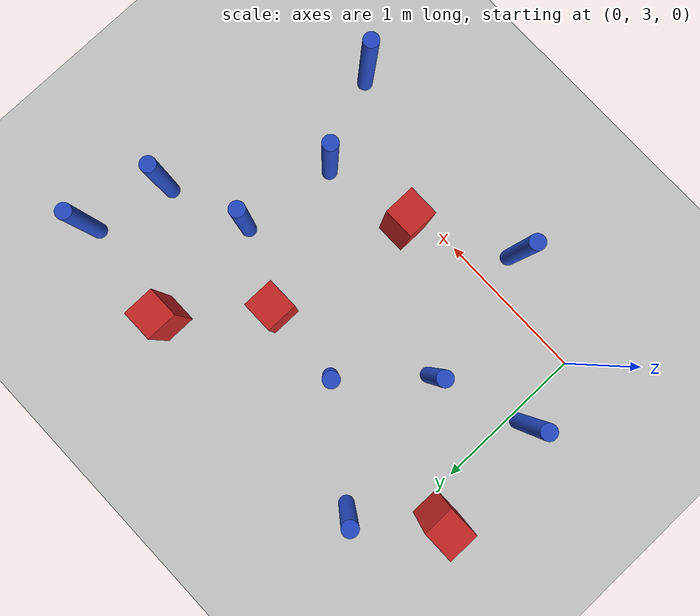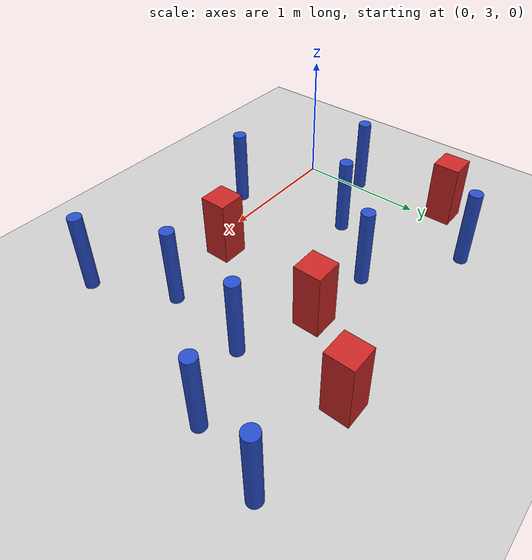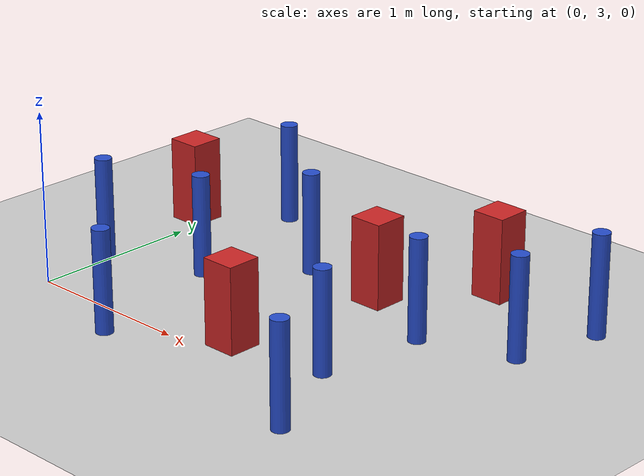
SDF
<sdf version="1.6">
 <world name="default">
  <model name="ground_plane">
   <static>1</static>
   <link name="link">
    <collision name="collision">
     <geometry><plane><normal>0 0 1</normal><size>100 100</size></plane></geometry>
     <surface><friction><ode><mu>100</mu><mu2>50</mu2></ode></friction></surface>
    </collision>
    <visual name="visual">
     <cast_shadows>0</cast_shadows>
     <geometry><plane><normal>0 0 1</normal><size>100 100</size></plane></geometry>
     <material>
      <ambient>1.0 1.0 1.0 1.0</ambient>
      <diffuse>0.8 0.8 0.8 1.0</diffuse>
      <specular>0.01 0.01 0.01 1.000000</specular>
     </material>
    </visual>
   </link>
  </model>
  <model name="square_post_obstacle95">
   <static>true</static>
   <pose>-0.101948517091 4.22717936182 1.91545236811e-07 -7.35059704564e-06 1.12565212e-07 2.39332434364e-05</pose>
   <link name="link">
    <pose>0 0 0.25 0 -0 0</pose>
    <inertial>
     <mass>100</mass>
     <inertia>
      <ixx>0.166667</ixx>
      <ixy>0</ixy>
      <ixz>0</ixz>
      <iyy>0.166667</iyy>
      <iyz>0</iyz>
      <izz>0.166667</izz>
     </inertia>
    </inertial>
    <collision name="collision"><geometry><box><size>.2 .2 .5</size></box></geometry></collision>
    <visual name="visual">
     <geometry><box><size>.2 .2 .5</size></box></geometry>
     <material>
      <script><name>Gazebo/Red</name><uri>file://media/materials/scripts/gazebo.material</uri></script>
     </material>
    </visual>
   </link>
  </model>
  <model name="pole_obstacle117">
   <static>true</static>
   <pose>2.63049294714 4.57048623213 7.38925637345e-09 -8.47170692798e-08 1.24976765033e-08 -1.74513093019e-07</pose>
   <link name="link">
    <pose>0 0 0.3 0 -0 0</pose>
    <inertial>
     <mass>1</mass>
     <inertia><ixx>0.145833</ixx><ixy>0</ixy><ixz>0</ixz><iyy>0.145833</iyy><iyz>0</iyz><izz>0.125</izz></inertia>
    </inertial>
    <collision name="collision">
     <geometry><cylinder><radius>0.05</radius><length>.6</length></cylinder></geometry>
    </collision>
    <visual name="visual">
     <geometry><cylinder><radius>0.05</radius><length>.6</length></cylinder></geometry>
     <material>
      <script><name>Gazebo/Blue</name><uri>file://media/materials/scripts/gazebo.material</uri></script>
     </material>
    </visual>
   </link>
  </model>
  <model name="square_post_obstacle113">
   <static>true</static>
   <pose>1.90695930333 4.61768448525 1.91545236811e-07 -7.35059704564e-06 1.12565212e-07 2.39332434364e-05</pose>
   <link name="link">
    <pose>0 0 0.25 0 -0 0</pose>
    <inertial>
     <mass>100</mass>
     <inertia>
      <ixx>0.166667</ixx>
      <ixy>0</ixy>
      <ixz>0</ixz>
      <iyy>0.166667</iyy>
      <iyz>0</iyz>
      <izz>0.166667</izz>
     </inertia>
    </inertial>
    <collision name="collision"><geometry><box><size>.2 .2 .5</size></box></geometry></collision>
    <visual name="visual">
     <geometry><box><size>.2 .2 .5</size></box></geometry>
     <material>
      <script><name>Gazebo/Red</name><uri>file://media/materials/scripts/gazebo.material</uri></script>
     </material>
    </visual>
   </link>
  </model>
  <model name="pole_obstacle141">
   <static>true</static>
   <pose>2.50846986795 4.05662313125 7.38925637345e-09 -8.47170692798e-08 1.24976765033e-08 -1.74513093019e-07</pose>
   <link name="link">
    <pose>0 0 0.3 0 -0 0</pose>
    <inertial>
     <mass>1</mass>
     <inertia><ixx>0.145833</ixx><ixy>0</ixy><ixz>0</ixz><iyy>0.145833</iyy><iyz>0</iyz><izz>0.125</izz></inertia>
    </inertial>
    <collision name="collision">
     <geometry><cylinder><radius>0.05</radius><length>.6</length></cylinder></geometry>
    </collision>
    <visual name="visual">
     <geometry><cylinder><radius>0.05</radius><length>.6</length></cylinder></geometry>
     <material>
      <script><name>Gazebo/Blue</name><uri>file://media/materials/scripts/gazebo.material</uri></script>
     </material>
    </visual>
   </link>
  </model>
  <model name="pole_obstacle144">
   <static>true</static>
   <pose>2.17845305973 2.66415931733 7.38925637345e-09 -8.47170692798e-08 1.24976764939e-08 -1.74513093025e-07</pose>
   <link name="link">
    <pose>0 0 0.3 0 -0 0</pose>
    <inertial>
     <mass>1</mass>
     <inertia><ixx>0.145833</ixx><ixy>0</ixy><ixz>0</ixz><iyy>0.145833</iyy><iyz>0</iyz><izz>0.125</izz></inertia>
    </inertial>
    <collision name="collision">
     <geometry><cylinder><radius>0.05</radius><length>.6</length></cylinder></geometry>
    </collision>
    <visual name="visual">
     <geometry><cylinder><radius>0.05</radius><length>.6</length></cylinder></geometry>
     <material>
      <script><name>Gazebo/Blue</name><uri>file://media/materials/scripts/gazebo.material</uri></script>
     </material>
    </visual>
   </link>
  </model>
  <model name="pole_obstacle177">
   <static>true</static>
   <pose>0.953067478455 4.12687048384 7.38925637345e-09 -8.471706928e-08 1.24976765144e-08 -1.74513093012e-07</pose>
   <link name="link">
    <pose>0 0 0.3 0 -0 0</pose>
    <inertial>
     <mass>1</mass>
     <inertia><ixx>0.145833</ixx><ixy>0</ixy><ixz>0</ixz><iyy>0.145833</iyy><iyz>0</iyz><izz>0.125</izz></inertia>
    </inertial>
    <collision name="collision">
     <geometry><cylinder><radius>0.05</radius><length>.6</length></cylinder></geometry>
    </collision>
    <visual name="visual">
     <geometry><cylinder><radius>0.05</radius><length>.6</length></cylinder></geometry>
     <material>
      <script><name>Gazebo/Blue</name><uri>file://media/materials/scripts/gazebo.material</uri></script>
     </material>
    </visual>
   </link>
  </model>
  <model name="square_post_obstacle172">
   <static>true</static>
   <pose>1.3238068495 3.15627844694 1.91545236811e-07 -7.35059704564e-06 1.12565212e-07 2.39332434364e-05</pose>
   <link name="link">
    <pose>0 0 0.25 0 -0 0</pose>
    <inertial>
     <mass>100</mass>
     <inertia>
      <ixx>0.166667</ixx>
      <ixy>0</ixy>
      <ixz>0</ixz>
      <iyy>0.166667</iyy>
      <iyz>0</iyz>
      <izz>0.166667</izz>
     </inertia>
    </inertial>
    <collision name="collision"><geometry><box><size>.2 .2 .5</size></box></geometry></collision>
    <visual name="visual">
     <geometry><box><size>.2 .2 .5</size></box></geometry>
     <material>
      <script><name>Gazebo/Red</name><uri>file://media/materials/scripts/gazebo.material</uri></script>
     </material>
    </visual>
   </link>
  </model>
  <model name="square_post_obstacle176">
   <static>true</static>
   <pose>1.48437570815 4.09719617396 1.91545236811e-07 -7.35059704564e-06 1.12565212e-07 2.39332434364e-05</pose>
   <link name="link">
    <pose>0 0 0.25 0 -0 0</pose>
    <inertial>
     <mass>100</mass>
     <inertia>
      <ixx>0.166667</ixx>
      <ixy>0</ixy>
      <ixz>0</ixz>
      <iyy>0.166667</iyy>
      <iyz>0</iyz>
      <izz>0.166667</izz>
     </inertia>
    </inertial>
    <collision name="collision"><geometry><box><size>.2 .2 .5</size></box></geometry></collision>
    <visual name="visual">
     <geometry><box><size>.2 .2 .5</size></box></geometry>
     <material>
      <script><name>Gazebo/Red</name><uri>file://media/materials/scripts/gazebo.material</uri></script>
     </material>
    </visual>
   </link>
  </model>
  <model name="pole_obstacle210">
   <static>true</static>
   <pose>1.98516598058 3.86835828804 7.38925637345e-09 -8.47170692799e-08 1.24976765015e-08 -1.74513093019e-07</pose>
   <link name="link">
    <pose>0 0 0.3 0 -0 0</pose>
    <inertial>
     <mass>1</mass>
     <inertia><ixx>0.145833</ixx><ixy>0</ixy><ixz>0</ixz><iyy>0.145833</iyy><iyz>0</iyz><izz>0.125</izz></inertia>
    </inertial>
    <collision name="collision">
     <geometry><cylinder><radius>0.05</radius><length>.6</length></cylinder></geometry>
    </collision>
    <visual name="visual">
     <geometry><cylinder><radius>0.05</radius><length>.6</length></cylinder></geometry>
     <material>
      <script><name>Gazebo/Blue</name><uri>file://media/materials/scripts/gazebo.material</uri></script>
     </material>
    </visual>
   </link>
  </model>
  <model name="pole_obstacle211">
   <static>true</static>
   <pose>0.537054522652 3.67712919654 7.38925637345e-09 -8.471706928e-08 1.2497676512e-08 -1.74513093015e-07</pose>
   <link name="link">
    <pose>0 0 0.3 0 -0 0</pose>
    <inertial>
     <mass>1</mass>
     <inertia><ixx>0.145833</ixx><ixy>0</ixy><ixz>0</ixz><iyy>0.145833</iyy><iyz>0</iyz><izz>0.125</izz></inertia>
    </inertial>
    <collision name="collision">
     <geometry><cylinder><radius>0.05</radius><length>.6</length></cylinder></geometry>
    </collision>
    <visual name="visual">
     <geometry><cylinder><radius>0.05</radius><length>.6</length></cylinder></geometry>
     <material>
      <script><name>Gazebo/Blue</name><uri>file://media/materials/scripts/gazebo.material</uri></script>
     </material>
    </visual>
   </link>
  </model>
  <model name="pole_obstacle214">
   <static>true</static>
   <pose>-0.0466436121755 3.46974929724 7.38925637345e-09 -8.47170692793e-08 1.24976764354e-08 -1.74513093044e-07</pose>
   <link name="link">
    <pose>0 0 0.3 0 -0 0</pose>
    <inertial>
     <mass>1</mass>
     <inertia><ixx>0.145833</ixx><ixy>0</ixy><ixz>0</ixz><iyy>0.145833</iyy><iyz>0</iyz><izz>0.125</izz></inertia>
    </inertial>
    <collision name="collision">
     <geometry><cylinder><radius>0.05</radius><length>.6</length></cylinder></geometry>
    </collision>
    <visual name="visual">
     <geometry><cylinder><radius>0.05</radius><length>.6</length></cylinder></geometry>
     <material>
      <script><name>Gazebo/Blue</name><uri>file://media/materials/scripts/gazebo.material</uri></script>
     </material>
    </visual>
   </link>
  </model>
  <model name="pole_obstacle230">
   <static>true</static>
   <pose>1.90436000957 3.23788002078 7.38925637345e-09 -8.47170692793e-08 1.24976764479e-08 -1.74513093037e-07</pose>
   <link name="link">
    <pose>0 0 0.3 0 -0 0</pose>
    <inertial>
     <mass>1</mass>
     <inertia><ixx>0.145833</ixx><ixy>0</ixy><ixz>0</ixz><iyy>0.145833</iyy><iyz>0</iyz><izz>0.125</izz></inertia>
    </inertial>
    <collision name="collision">
     <geometry><cylinder><radius>0.05</radius><length>.6</length></cylinder></geometry>
    </collision>
    <visual name="visual">
     <geometry><cylinder><radius>0.05</radius><length>.6</length></cylinder></geometry>
     <material>
      <script><name>Gazebo/Blue</name><uri>file://media/materials/scripts/gazebo.material</uri></script>
     </material>
    </visual>
   </link>
  </model>
  <model name="pole_obstacle233">
   <static>true</static>
   <pose>0.316634009575 4.58930002078 7.38925637345e-09 -8.47170692799e-08 1.2497676511e-08 -1.74513093014e-07</pose>
   <link name="link">
    <pose>0 0 0.3 0 -0 0</pose>
    <inertial>
     <mass>1</mass>
     <inertia><ixx>0.145833</ixx><ixy>0</ixy><ixz>0</ixz><iyy>0.145833</iyy><iyz>0</iyz><izz>0.125</izz></inertia>
    </inertial>
    <collision name="collision">
     <geometry><cylinder><radius>0.05</radius><length>.6</length></cylinder></geometry>
    </collision>
    <visual name="visual">
     <geometry><cylinder><radius>0.05</radius><length>.6</length></cylinder></geometry>
     <material>
      <script><name>Gazebo/Blue</name><uri>file://media/materials/scripts/gazebo.material</uri></script>
     </material>
    </visual>
   </link>
  </model>
  <model name="pole_obstacle235">
   <static>true</static>
   <pose>0.723064009575 2.79174002078 7.38925637345e-09 -8.47170692799e-08 1.24976765064e-08 -1.74513093017e-07</pose>
   <link name="link">
    <pose>0 0 0.3 0 -0 0</pose>
    <inertial>
     <mass>1</mass>
     <inertia><ixx>0.145833</ixx><ixy>0</ixy><ixz>0</ixz><iyy>0.145833</iyy><iyz>0</iyz><izz>0.125</izz></inertia>
    </inertial>
    <collision name="collision">
     <geometry><cylinder><radius>0.05</radius><length>.6</length></cylinder></geometry>
    </collision>
    <visual name="visual">
     <geometry><cylinder><radius>0.05</radius><length>.6</length></cylinder></geometry>
     <material>
      <script><name>Gazebo/Blue</name><uri>file://media/materials/scripts/gazebo.material</uri></script>
     </material>
    </visual>
   </link>
  </model>
 </world>
</sdf>
